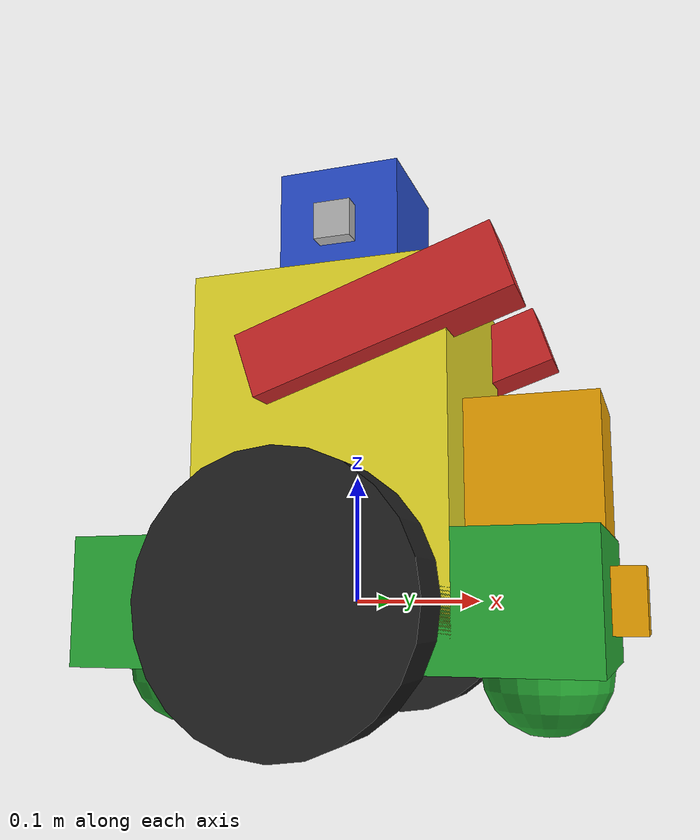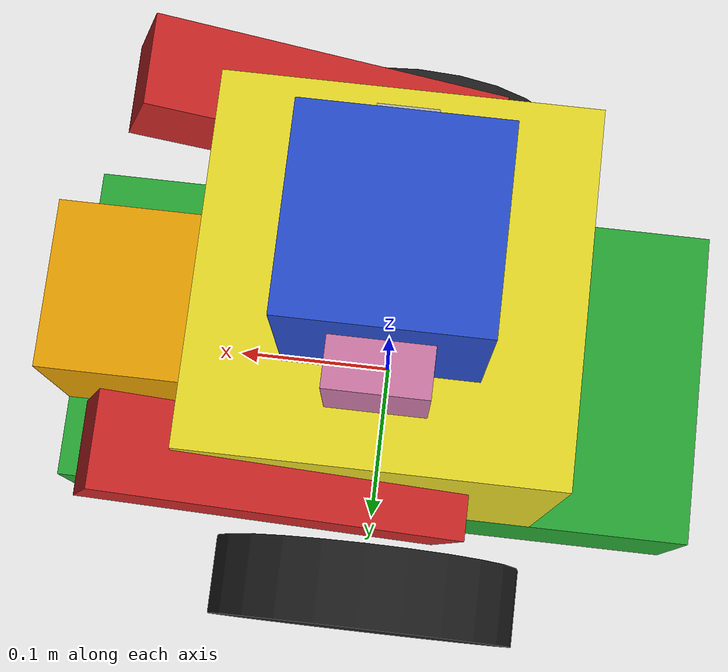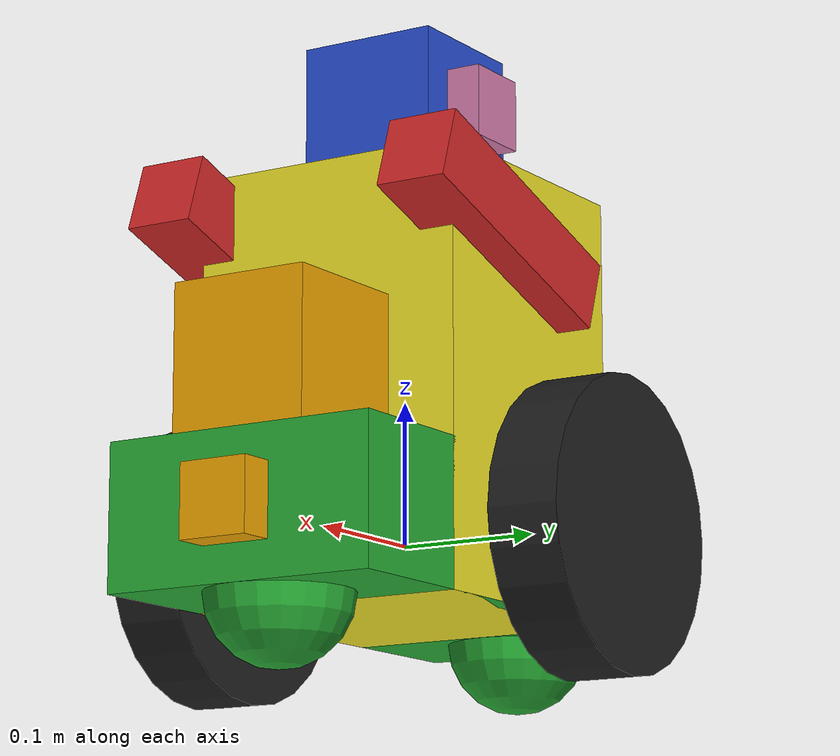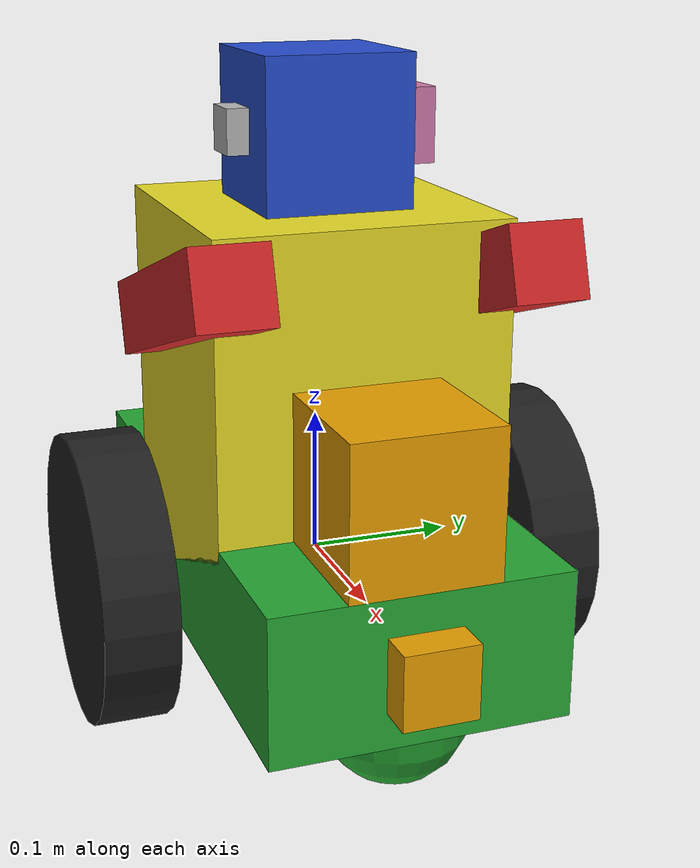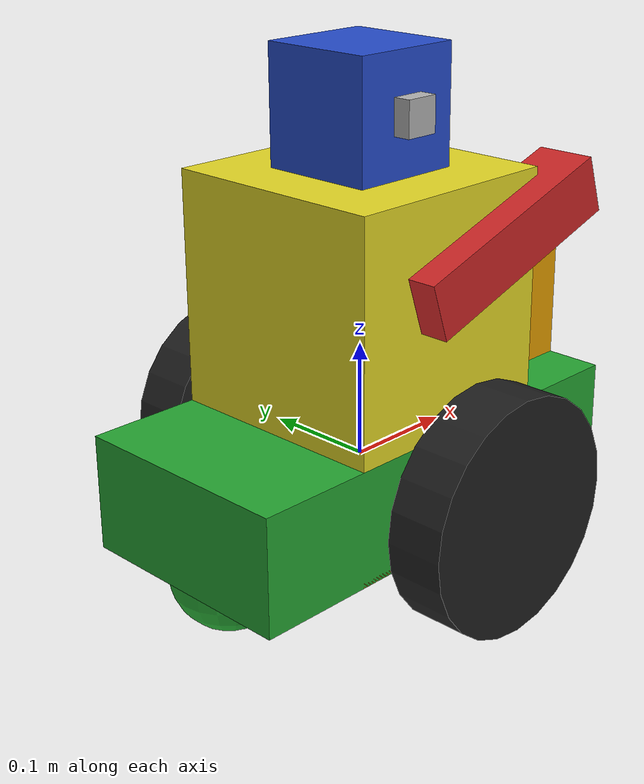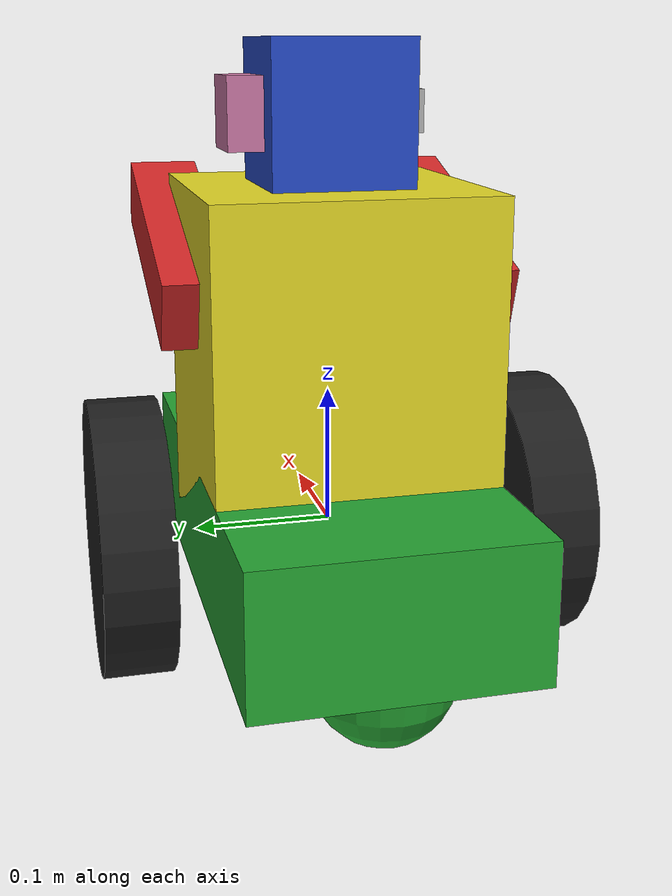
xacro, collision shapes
<?xml version='1.0'?>

<robot name="my_robot" xmlns:xacro="http://www.ros.org/wiki/xacro">
<xacro:property name="M_PI" value="3.1415926"/>
<xacro:property name="kinect_cam_py" value="-0.0125"/>
    <xacro:include filename="$(find ROBOT)/urdf/my_robot.gazebo" />

    <link name="base_footprint"></link>

    <joint name="robot_footprint_joint" type="fixed">
        <origin xyz="0 0 0" rpy="0 0 0" />
        <parent link="base_footprint"/>
	    <child link="chassis"/>
    </joint>

    <link name="chassis">
        <pose>0 0 0.1 0 0 0</pose>

        <inertial>
            <mass value="15.0"/>
            <origin xyz="0.0 0 0" rpy="0 0 0"/>
            <inertia
                ixx="0.1" ixy="0" ixz="0"
                iyy="0.1" iyz="0"
                izz="0.1"
                />
        </inertial>

        <collision name="collision">
            <origin xyz="0 0 0" rpy="0 0 0"/>
            <geometry>
                <box size=".4 .2 .1"/>
            </geometry>
        </collision>

        <visual name="chassis_visual">
            <origin xyz="0 0 0" rpy="0 0 0 "/>
            <geometry>
                <box size=".4 .2 .1"/>
            </geometry>
        </visual>

        <collision name="back_caster_collision">
            <origin xyz="-0.15 0 -0.05"/>
            <geometry>
                <sphere radius="0.0499"/>
            </geometry>
            <surface>
                <friction>
                     <ode>
                         <mu>0</mu>
                         <mu2>0</mu2>
                     </ode>
                </friction>
            </surface>
            <!--dynamics damping="0" friction="0"/-->
        </collision>

        <visual name="back_caster_visual">
            <origin xyz="-0.15 0 -0.05"/>
            <geometry>
                <sphere radius="0.05"/>
            </geometry>
        </visual>

        <collision name="front_caster_collision">
            <origin xyz="0.15 0 -0.05" rpy=" 0 0 0 "/>
            <geometry>
                <sphere radius="0.0499"/>
            </geometry>
             <surface>
                <friction>
                     <ode>
                         <mu>0</mu>
                         <mu2>0</mu2>
                     </ode>
                </friction>
            </surface>
         <!--dynamics damping="0" friction="0"/-->
        </collision>

        <visual name="front_caster_visual">
            <origin xyz="0.15 0 -0.05" rpy="0 0 0"/>
            <geometry>
                <sphere radius="0.05"/>
            </geometry>
        </visual>

    </link>

    <joint name="body_joint" type="fixed">
        <origin xyz="0 0 0.1" rpy="0 0 0" />
        <parent link="chassis"/>
	<child link="body"/>
    </joint>

     <link name="body">

        <inertial>
            <mass value="10.0"/>
            <origin xyz="0.0 0 0" rpy="0 0 0"/>
            <inertia
                ixx="0.1" ixy="0" ixz="0"
                iyy="0.1" iyz="0"
                izz="0.1"
                />
        </inertial>

        <collision>
            <origin xyz="0 0 0" rpy="0 0 0"/>
            <geometry>
                <box size=".2 .2 .3"/>
            </geometry>
        </collision>

        <visual>
            <origin xyz="0 0 0" rpy="0 0 0 "/>
            <geometry>
                <box size=".2 .2 .3"/>
            </geometry>

        </visual>

    </link>

    <joint name="head_joint" type="fixed">
        <origin xyz="0 0 0.2" rpy="0 0 0" />
        <parent link="body"/>
	<child link="head"/>
    </joint>

    <link name="head">

        <inertial>
            <mass value="1.0"/>
            <origin xyz="0.0 0 0" rpy="0 0 0"/>
            <inertia
                ixx="0.1" ixy="0" ixz="0"
                iyy="0.1" iyz="0"
                izz="0.1"
                />
        </inertial>

        <collision>
            <origin xyz="0 0 0" rpy="0 0 0"/>
            <geometry>
                <box size=".1 .1 .1"/>
            </geometry>
        </collision>

        <visual>
            <origin xyz="0 0 0" rpy="0 0 0 "/>
            <geometry>
                <box size=".1 .1 .1"/>
            </geometry>

        </visual>

    </link>

    <joint name="left_arm_joint" type="fixed">
        <origin xyz="0.05 0.1 0.1" rpy="0 1.25 0" />
        <parent link="body"/>
	<child link="left_arm"/>
    </joint>

    <link name="left_arm">

        <inertial>
            <mass value="1.0"/>
            <origin xyz="0.0 0 0" rpy="0 0 0"/>
            <inertia
                ixx="0.1" ixy="0" ixz="0"
                iyy="0.1" iyz="0"
                izz="0.1"
                />
        </inertial>

        <collision>
            <origin xyz="0 0 0" rpy="0 0 0"/>
            <geometry>
                <box size=".05 .05 .2"/>
            </geometry>
        </collision>

        <visual>
            <origin xyz="0 0 0" rpy="0 0 0 "/>
            <geometry>
                <box size=".05 .05 .2"/>
            </geometry>

        </visual>

    </link>

    <joint name="right_arm_joint" type="fixed">
        <origin xyz="0.05 -0.1 0.1" rpy="0 1.25 0" />
        <parent link="body"/>
	<child link="right_arm"/>
    </joint>

    <link name="right_arm">

        <inertial>
            <mass value="1.0"/>
            <origin xyz="0.0 0 0" rpy="0 0 0"/>
            <inertia
                ixx="0.1" ixy="0" ixz="0"
                iyy="0.1" iyz="0"
                izz="0.1"
                />
        </inertial>

        <collision>
            <origin xyz="0 0 0" rpy="0 0 0"/>
            <geometry>
                <box size=".05 .05 .2"/>
            </geometry>
        </collision>

        <visual>
            <origin xyz="0 0 0" rpy="0 0 0 "/>
            <geometry>
                <box size=".05 .05 .2"/>
            </geometry>

        </visual>

    </link>

    <link name="right_wheel">

        <collision>
            <origin xyz="0 0 0" rpy="0 1.5707 1.5707"/>
            <geometry>
                <cylinder radius="0.1" length="0.05"/>
            </geometry>
        </collision>

        <inertial>
            <mass value="5"/>
            <origin xyz="0 0 0" rpy="0 1.5707 1.5707"/>
            <inertia
            ixx="0.1" ixy="0" ixz="0"
            iyy="0.1" iyz="0"
            izz="0.1"
            />
        </inertial>

        <visual>
            <origin xyz="0 0 0" rpy="0 1.5707 1.5707"/>
            <geometry>
                <cylinder radius="0.1" length="0.05"/>
            </geometry>
        </visual>

    </link>

    <link name="left_wheel">

        <collision>
            <origin xyz="0 0 0" rpy="0 1.5707 1.5707"/>
            <geometry>
                <cylinder radius="0.1" length="0.05"/>
            </geometry>
        </collision>

        <inertial>
            <mass value="5"/>
            <origin xyz="0 0 0" rpy="0 1.5707 1.5707"/>
            <inertia
            ixx="0.1" ixy="0" ixz="0"
            iyy="0.1" iyz="0"
            izz="0.1"
            />
        </inertial>

        <visual>
            <origin xyz="0 0 0" rpy="0 1.5707 1.5707"/>
            <geometry>
                <cylinder radius="0.1" length="0.05"/>
            </geometry>
        </visual>

    </link>

        <gazebo reference="left_wheel">
            <material>Gazebo/Black</material>
        </gazebo>

        <gazebo reference="right_wheel">
            <material>Gazebo/Black</material>
        </gazebo>

        <gazebo reference="head">
            <material>Gazebo/Blue</material>
        </gazebo>

        <gazebo reference="body">
            <material>Gazebo/Yellow</material>
        </gazebo>

        <gazebo reference="left_arm">
            <material>Gazebo/Red</material>
        </gazebo>

        <gazebo reference="right_arm">
            <material>Gazebo/Red</material>
        </gazebo>

        <gazebo reference="chassis">
            <material>Gazebo/Green</material>
        </gazebo>

    <joint name="left_wheel_hinge" type="continuous">
        <origin xyz="0 0.15 0" rpy="0 0 0"/>
        <child link="left_wheel"/>
        <parent link="chassis"/>
        <axis xyz="0 1 0" rpy="0 0 0"/>
        <limit effort="10000" velocity="1000"/>
        <dynamics damping="1.0" friction="15.0"/>
    </joint>

    <joint name="right_wheel_hinge" type="continuous">
        <origin xyz="0 -0.15 0" rpy="0 0 0"/>
        <child link="right_wheel"/>
        <parent link="chassis"/>
        <axis xyz="0 1 0" rpy="0 0 0"/>
        <limit effort="10000" velocity="1000"/>
        <dynamics damping="1.0" friction="15.0"/>
    </joint>

    <link name="camera">
        <collision>
            <origin xyz="0 0 0" rpy="0 0 0"/>
            <geometry>
                <box size="0.05 0.05 0.05"/>
            </geometry>
        </collision>

        <inertial>
            <origin xyz="0 0 0" rpy="0 0 0"/>
            <mass value="0.1"/>
            <inertia
                ixx="1e-6" ixy="0" ixz="0"
                iyy="1e-6" iyz="0"
                izz="1e-6"
                />
        </inertial>

        <visual>
            <origin xyz="0 0 0" rpy="0 0 0"/>
            <geometry>
                <box size="0.05 0.05 0.05"/>
            </geometry>
        </visual>

    </link>

    <joint name="camera_joint" type="fixed">
        <origin xyz="0.2 0 0" rpy="0 0 0"/>
        <parent link="chassis"/>
        <child link="camera"/>
        <axis xyz="0 1 0"/>
    </joint>

<!-- kinect -->
 <link name="sensor">
   <visual>
    <origin xyz="0 0 0" rpy="0 0 0"/>
    <geometry>
    <mesh filename="package://ROBOT/meshes/kinect.dae"/>
    </geometry>
   </visual>
  </link>

  <joint name="kinect_to_chassis" type="fixed">
    <parent link="chassis"/>
    <child link="sensor"/>
    <origin xyz="0.05 0 0.37" rpy="0 ${0*M_PI/180} 0"/>
  </joint>

  <link name="camera_rgb_frame"/>
  <joint name="camera_rgb_joint" type="fixed">
     <origin xyz="-0 -0.0125 0" rpy="0 0 0"/>
     <parent link="sensor"/>
     <child link="camera_rgb_frame" />
  </joint>

<link name="camera_rgb_optical_frame"/>
    <joint name="camera_rgb_optical_joint" type="fixed">
      <origin xyz="0 0 0" rpy="${-M_PI/2} 0 ${-M_PI/2}" />
      <parent link="camera_rgb_frame" />
      <child link="camera_rgb_optical_frame" />
    </joint>

<link name="camera_depth_frame"/>
    <joint name="camera_depth_joint" type="fixed">
	  <origin xyz="0 ${2 * -kinect_cam_py} 0" rpy="0 0 0" />
	  <parent link="camera_rgb_frame" />
	  <child link="camera_depth_frame" />
	</joint>

	<link name="camera_depth_optical_frame"/>
	<joint name="camera_depth_optical_joint" type="fixed">
	  <origin xyz="0 0 0" rpy="${-M_PI/2} 0 ${-M_PI/2}" />
	  <parent link="camera_depth_frame" />
	  <child link="camera_depth_optical_frame" />
	</joint>
   <link name="left_ear">
        <collision>
            <origin xyz="0 0 0" rpy="0 0 0"/>
            <geometry>
                <box size="0.05 0.05 0.05"/>
            </geometry>
        </collision>

        <inertial>
            <origin xyz="0 0 0" rpy="0 0 0"/>
            <mass value="0.1"/>
            <inertia
                ixx="1e-6" ixy="0" ixz="0"
                iyy="1e-6" iyz="0"
                izz="1e-6"
                />
        </inertial>

        <visual>
            <origin xyz="0 0 0" rpy="0 0 0"/>
            <geometry>
                <box size="0.03 0.03 0.03"/>
            </geometry>
        </visual>

    </link>

    <joint name="left_ear_joint" type="fixed">
        <origin xyz="0.0 0.05 0.0" rpy="0 0 1.57"/>
        <parent link="head"/>
        <child link="left_ear"/>
        <axis xyz="0 1 0"/>
    </joint>

    <link name="right_ear">
        <collision>
            <origin xyz="0 0 0" rpy="0 0 0"/>
            <geometry>
                <box size="0.03 0.03 0.03"/>
            </geometry>
        </collision>

        <inertial>
            <origin xyz="0 0 0" rpy="0 0 0"/>
            <mass value="0.1"/>
            <inertia
                ixx="1e-6" ixy="0" ixz="0"
                iyy="1e-6" iyz="0"
                izz="1e-6"
                />
        </inertial>

        <visual>
            <origin xyz="0 0 0" rpy="0 0 0"/>
            <geometry>
                <box size="0.05 0.05 0.05"/>
            </geometry>
        </visual>

    </link>

    <joint name="right_ear_joint" type="fixed">
        <origin xyz="0.0 -0.05 0.0" rpy="0 0 -1.57"/>
        <parent link="head"/>
        <child link="right_ear"/>
        <axis xyz="0 1 0"/>
    </joint>

    <link name="hokuyo">
        <collision>
            <origin xyz="0 0 0" rpy="0 0 0"/>
            <geometry>
                <box size="0.1 0.1 0.1"/>
            </geometry>
        </collision>

        <inertial>
            <origin xyz="0 0 0" rpy="0 0 0"/>
            <mass value="1e-5"/>
            <inertia
                ixx="1e-6" ixy="0" ixz="0"
                iyy="1e-6" iyz="0"
                izz="1e-6"
                />
        </inertial>

        <visual>
            <origin xyz="0 0 0" rpy="0 0 0"/>
            <geometry>
                <mesh filename="package://ROBOT/meshes/hokuyo.dae"/>
            </geometry>
        </visual>

    </link>

    <joint name="hokuyo_joint" type="fixed">
        <origin xyz="0.15 0 0.1" rpy="0 0 0"/>
        <axis xyz="0 1 0"/>
        <parent link="chassis"/>
        <child link="hokuyo"/>
    </joint>

</robot>
